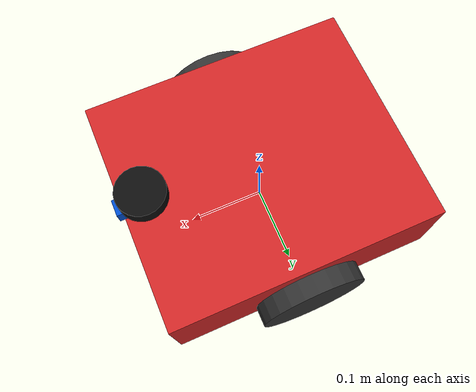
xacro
<?xml version="1.0"?>
<robot xmlns:xacro="http://www.ros.org/wiki/xacro" name="saft_city_robot">

  <xacro:property name="PI" value="3.1415926535"/>
  <xacro:property name="base_length" value="0.35"/>
  <xacro:property name="base_width" value="0.30"/>
  <xacro:property name="base_height" value="0.12"/>
  <xacro:property name="base_mass" value="4.0"/>
  <xacro:property name="wheel_radius" value="0.07"/>
  <xacro:property name="wheel_length" value="0.025"/>
  <xacro:property name="wheel_mass" value="0.3"/>
  <xacro:property name="wheel_diameter" value="${2 * wheel_radius}"/>

  <xacro:macro name="inertia_box" params="mass x y z">
    <inertia ixx="${(mass/12.0)*(y*y+z*z)}" ixy="0" ixz="0"
             iyy="${(mass/12.0)*(x*x+z*z)}" iyz="0"
             izz="${(mass/12.0)*(x*x+y*y)}"/>
  </xacro:macro>

  <!-- base_footprint -->
  <link name="base_footprint"/>
  <joint name="base_footprint_joint" type="fixed">
    <parent link="base_footprint"/>
    <child link="base_link"/>
    <origin xyz="0 0 ${base_height/2}" rpy="0 0 0"/>
  </joint>

  <!-- 底盘 -->
  <link name="base_link">
    <visual>
      <geometry><box size="${base_length} ${base_width} ${base_height}"/></geometry>
      <material name="red"><color rgba="0.8 0.15 0.15 1.0"/></material>
    </visual>
    <collision>
      <geometry><box size="${base_length} ${base_width} ${base_height}"/></geometry>
    </collision>
    <inertial>
      <mass value="${base_mass}"/>
      <xacro:inertia_box mass="${base_mass}" x="${base_length}" y="${base_width}" z="${base_height}"/>
    </inertial>
  </link>

  <!-- 左轮 -->
  <link name="left_wheel_link">
    <visual>
      <origin xyz="0 0 0" rpy="${PI/2} 0 0"/>
      <geometry><cylinder radius="${wheel_radius}" length="${wheel_length}"/></geometry>
      <material name="grey"><color rgba="0.2 0.2 0.2 1.0"/></material>
    </visual>
    <collision>
      <origin xyz="0 0 0" rpy="${PI/2} 0 0"/>
      <geometry><cylinder radius="${wheel_radius}" length="${wheel_length}"/></geometry>
    </collision>
    <inertial>
      <mass value="${wheel_mass}"/>
      <inertia ixx="0.001" ixy="0" ixz="0" iyy="0.001" iyz="0" izz="0.001"/>
    </inertial>
  </link>
  <joint name="left_wheel_joint" type="continuous">
    <parent link="base_link"/>
    <child link="left_wheel_link"/>
    <origin xyz="0 ${-base_width/2 - wheel_length/2} ${-base_height/4}" rpy="0 0 0"/>
    <axis xyz="0 1 0"/>
  </joint>

  <!-- 右轮 -->
  <link name="right_wheel_link">
    <visual>
      <origin xyz="0 0 0" rpy="${PI/2} 0 0"/>
      <geometry><cylinder radius="${wheel_radius}" length="${wheel_length}"/></geometry>
      <material name="grey"><color rgba="0.2 0.2 0.2 1.0"/></material>
    </visual>
    <collision>
      <origin xyz="0 0 0" rpy="${PI/2} 0 0"/>
      <geometry><cylinder radius="${wheel_radius}" length="${wheel_length}"/></geometry>
    </collision>
    <inertial>
      <mass value="${wheel_mass}"/>
      <inertia ixx="0.001" ixy="0" ixz="0" iyy="0.001" iyz="0" izz="0.001"/>
    </inertial>
  </link>
  <joint name="right_wheel_joint" type="continuous">
    <parent link="base_link"/>
    <child link="right_wheel_link"/>
    <origin xyz="0 ${base_width/2 + wheel_length/2} ${-base_height/4}" rpy="0 0 0"/>
    <axis xyz="0 1 0"/>
  </joint>

  <!-- 万向轮 -->
  <link name="caster_link">
    <visual>
      <geometry><sphere radius="0.02"/></geometry>
      <material name="silver"><color rgba="0.6 0.6 0.6 1.0"/></material>
    </visual>
    <collision>
      <geometry><sphere radius="0.02"/></geometry>
    </collision>
    <inertial><mass value="0.05"/><inertia ixx="0.0001" ixy="0" ixz="0" iyy="0.0001" iyz="0" izz="0.0001"/></inertial>
  </link>
  <joint name="caster_joint" type="fixed">
    <parent link="base_link"/>
    <child link="caster_link"/>
    <origin xyz="${base_length/3} 0 ${-base_height/2 - 0.02}" rpy="0 0 0"/>
  </joint>

  <!-- LiDAR -->
  <link name="laser_link">
    <visual>
      <geometry><cylinder radius="0.03" length="0.02"/></geometry>
      <material name="black"><color rgba="0.05 0.05 0.05 1.0"/></material>
    </visual>
    <inertial><mass value="0.05"/><inertia ixx="0.0001" ixy="0" ixz="0" iyy="0.0001" iyz="0" izz="0.0001"/></inertial>
  </link>
  <joint name="laser_joint" type="fixed">
    <parent link="base_link"/>
    <child link="laser_link"/>
    <origin xyz="${base_length/2 - 0.03} 0 ${base_height/2 + 0.04}" rpy="0 0 0"/>
  </joint>

  <!-- 相机 -->
  <link name="camera_link">
    <visual>
      <geometry><box size="0.03 0.02 0.02"/></geometry>
      <material name="blue"><color rgba="0.0 0.3 0.8 1.0"/></material>
    </visual>
    <inertial><mass value="0.03"/><inertia ixx="0.0001" ixy="0" ixz="0" iyy="0.0001" iyz="0" izz="0.0001"/></inertial>
  </link>
  <joint name="camera_joint" type="fixed">
    <parent link="base_link"/>
    <child link="camera_link"/>
    <origin xyz="${base_length/2 - 0.01} 0 ${base_height/2 + 0.02}" rpy="0 0 0"/>
  </joint>

  <!-- Gazebo 插件 -->
  <xacro:include filename="$(find saft_city_description)/urdf/saft_city_robot.gazebo.xacro"/>
</robot>
